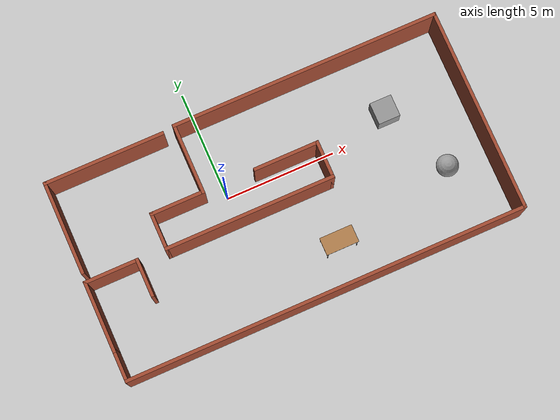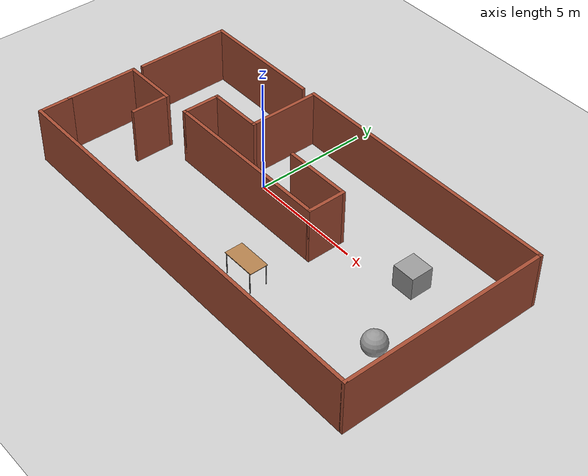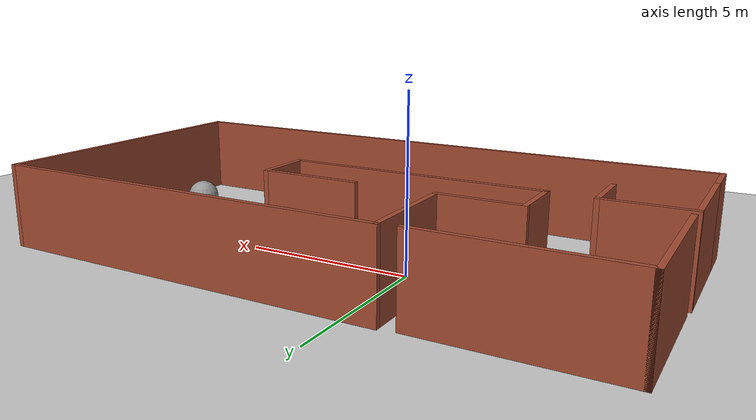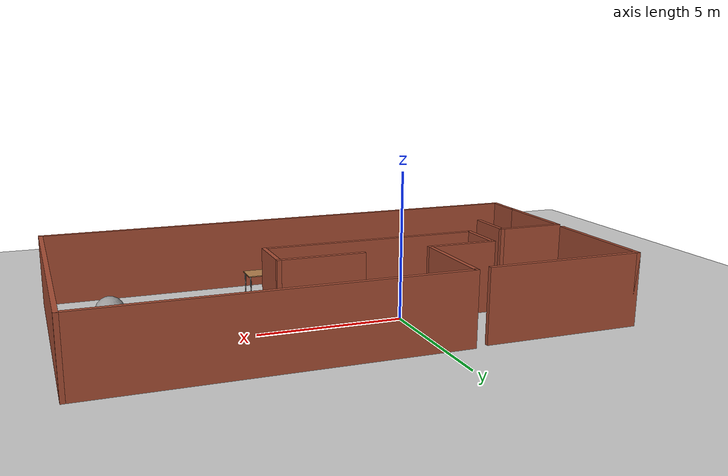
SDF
<sdf version="1.6">
 <world name="default">
  <light name="sun" type="directional">
   <pose>0 0 10 0 -0 0</pose>
   <diffuse>0.8 0.8 0.8 1</diffuse>
   <specular>0.2 0.2 0.2 1</specular>
   <attenuation>
    <range>1000</range>
    <constant>0.9</constant>
    <linear>0.01</linear>
    <quadratic>0.001</quadratic>
   </attenuation>
   <direction>-0.5 0.1 -0.9</direction>
  </light>
  <model name="ground_plane">
   <static>1</static>
   <link name="link">
    <collision name="collision">
     <geometry><plane><normal>0 0 1</normal><size>100 100</size></plane></geometry>
     <surface>
      <contact><collide_bitmask>65535</collide_bitmask></contact>
      <friction><ode><mu>100</mu><mu2>50</mu2></ode></friction>
     </surface>
    </collision>
    <visual name="visual">
     <cast_shadows>0</cast_shadows>
     <geometry><plane><normal>0 0 1</normal><size>100 100</size></plane></geometry>
     <material>
      <script><uri>file://media/materials/scripts/gazebo.material</uri><name>Gazebo/Grey</name></script>
     </material>
    </visual>
   </link>
  </model>
  <gravity>0 0 -9.8</gravity>
  <magnetic_field>6e-06 2.3e-05 -4.2e-05</magnetic_field>
  <atmosphere type="adiabatic"/>
  <physics name="default_physics" default="0" type="ode">
   <max_step_size>0.001</max_step_size>
   <real_time_factor>1</real_time_factor>
   <real_time_update_rate>1000</real_time_update_rate>
  </physics>
  <scene><ambient>0.4 0.4 0.4 1</ambient><background>0.7 0.7 0.7 1</background><shadows>1</shadows></scene>
  <spherical_coordinates>
   <surface_model>EARTH_WGS84</surface_model>
   <latitude_deg>0</latitude_deg>
   <longitude_deg>0</longitude_deg>
   <elevation>0</elevation>
   <heading_deg>0</heading_deg>
  </spherical_coordinates>
  <model name="room.world">
   <pose>2.12 -1.19 0 0 -0 0</pose>
   <link name="Wall_0">
    <collision name="Wall_0_Collision">
     <geometry><box><size>1.75 0.15 2.5</size></box></geometry>
     <pose>0 0 1.25 0 -0 0</pose>
    </collision>
    <visual name="Wall_0_Visual">
     <pose>0 0 1.25 0 -0 0</pose>
     <geometry><box><size>1.75 0.15 2.5</size></box></geometry>
     <material>
      <script><uri>file://media/materials/scripts/gazebo.material</uri><name>Gazebo/Bricks</name></script>
      <ambient>1 1 1 1</ambient>
     </material>
     <meta><layer>0</layer></meta>
    </visual>
    <pose>-6.7 -0.9 0 0 -0 1.5708</pose>
   </link>
   <link name="Wall_1">
    <collision name="Wall_1_Collision">
     <geometry><box><size>2.5 0.15 2.5</size></box></geometry>
     <pose>0 0 1.25 0 -0 0</pose>
    </collision>
    <visual name="Wall_1_Visual">
     <pose>0 0 1.25 0 -0 0</pose>
     <geometry><box><size>2.5 0.15 2.5</size></box></geometry>
     <material>
      <script><uri>file://media/materials/scripts/gazebo.material</uri><name>Gazebo/Bricks</name></script>
      <ambient>1 1 1 1</ambient>
     </material>
     <meta><layer>0</layer></meta>
    </visual>
    <pose>-7.875 -0.1 0 0 -0 3.14159</pose>
   </link>
   <link name="Wall_10">
    <collision name="Wall_10_Collision">
     <geometry><box><size>7.75 0.15 2.5</size></box></geometry>
     <pose>0 0 1.25 0 -0 0</pose>
    </collision>
    <visual name="Wall_10_Visual">
     <pose>0 0 1.25 0 -0 0</pose>
     <geometry><box><size>7.75 0.15 2.5</size></box></geometry>
     <material>
      <script><uri>file://media/materials/scripts/gazebo.material</uri><name>Gazebo/Bricks</name></script>
      <ambient>1 1 1 1</ambient>
     </material>
     <meta><layer>0</layer></meta>
    </visual>
    <pose>-1.6 -0.15 0 0 -0 0</pose>
   </link>
   <link name="Wall_11">
    <collision name="Wall_11_Collision">
     <geometry><box><size>1.75 0.15 2.5</size></box></geometry>
     <pose>0 0 1.25 0 -0 0</pose>
    </collision>
    <visual name="Wall_11_Visual">
     <pose>0 0 1.25 0 -0 0</pose>
     <geometry><box><size>1.75 0.15 2.5</size></box></geometry>
     <material>
      <script><uri>file://media/materials/scripts/gazebo.material</uri><name>Gazebo/Bricks</name></script>
      <ambient>1 1 1 1</ambient>
     </material>
     <meta><layer>0</layer></meta>
    </visual>
    <pose>2.2 0.65 0 0 -0 1.5708</pose>
   </link>
   <link name="Wall_12">
    <collision name="Wall_12_Collision">
     <geometry><box><size>3 0.15 2.5</size></box></geometry>
     <pose>0 0 1.25 0 -0 0</pose>
    </collision>
    <visual name="Wall_12_Visual">
     <pose>0 0 1.25 0 -0 0</pose>
     <geometry><box><size>3 0.15 2.5</size></box></geometry>
     <material>
      <script><uri>file://media/materials/scripts/gazebo.material</uri><name>Gazebo/Bricks</name></script>
      <ambient>1 1 1 1</ambient>
     </material>
     <meta><layer>0</layer></meta>
    </visual>
    <pose>0.775 1.45 0 0 -0 3.14159</pose>
   </link>
   <link name="Wall_14">
    <collision name="Wall_14_Collision">
     <geometry><box><size>4.25 0.15 2.5</size></box></geometry>
     <pose>0 0 1.25 0 -0 0</pose>
    </collision>
    <visual name="Wall_14_Visual">
     <pose>0 0 1.25 0 -0 0</pose>
     <geometry><box><size>4.25 0.15 2.5</size></box></geometry>
     <material>
      <script><uri>file://media/materials/scripts/gazebo.material</uri><name>Gazebo/Bricks</name></script>
      <ambient>1 1 1 1</ambient>
     </material>
     <meta><layer>0</layer></meta>
    </visual>
    <pose>-8.98811 2.39283 0 0 -0 1.5708</pose>
   </link>
   <link name="Wall_15">
    <collision name="Wall_15_Collision">
     <geometry><box><size>5.5 0.15 2.5</size></box></geometry>
     <pose>0 0 1.25 0 -0 0</pose>
    </collision>
    <visual name="Wall_15_Visual">
     <pose>0 0 1.25 0 -0 0</pose>
     <geometry><box><size>5.5 0.15 2.5</size></box></geometry>
     <material>
      <script><uri>file://media/materials/scripts/gazebo.material</uri><name>Gazebo/Bricks</name></script>
      <ambient>1 1 1 1</ambient>
     </material>
     <meta><layer>0</layer></meta>
    </visual>
    <pose>-6.31311 4.44283 0 0 -0 0</pose>
   </link>
   <link name="Wall_2">
    <collision name="Wall_2_Collision">
     <geometry><box><size>3.25 0.15 2.5</size></box></geometry>
     <pose>0 0 1.25 0 -0 0</pose>
    </collision>
    <visual name="Wall_2_Visual">
     <pose>0 0 1.25 0 -0 0</pose>
     <geometry><box><size>3.25 0.15 2.5</size></box></geometry>
     <material>
      <script><uri>file://media/materials/scripts/gazebo.material</uri><name>Gazebo/Bricks</name></script>
      <ambient>1 1 1 1</ambient>
     </material>
     <meta><layer>0</layer></meta>
    </visual>
    <pose>-9.05 -1.65 0 0 -0 -1.5708</pose>
   </link>
   <link name="Wall_3">
    <collision name="Wall_3_Collision">
     <geometry><box><size>1.5 0.15 2.5</size></box></geometry>
     <pose>0 0 1.25 0 -0 0</pose>
    </collision>
    <visual name="Wall_3_Visual">
     <pose>0 0 1.25 0 -0 0</pose>
     <geometry><box><size>1.5 0.15 2.5</size></box></geometry>
     <material>
      <script><uri>file://media/materials/scripts/gazebo.material</uri><name>Gazebo/Bricks</name></script>
      <ambient>1 1 1 1</ambient>
     </material>
     <meta><layer>0</layer></meta>
    </visual>
    <pose>-9.05 -3.875 0 0 -0 -1.5708</pose>
   </link>
   <link name="Wall_4">
    <collision name="Wall_4_Collision">
     <geometry><box><size>18.25 0.15 2.5</size></box></geometry>
     <pose>0 0 1.25 0 -0 0</pose>
    </collision>
    <visual name="Wall_4_Visual">
     <pose>0 0 1.25 0 -0 0</pose>
     <geometry><box><size>18.25 0.15 2.5</size></box></geometry>
     <material>
      <script><uri>file://media/materials/scripts/gazebo.material</uri><name>Gazebo/Bricks</name></script>
      <ambient>1 1 1 1</ambient>
     </material>
     <meta><layer>0</layer></meta>
    </visual>
    <pose>-0 -4.55 0 0 -0 0</pose>
   </link>
   <link name="Wall_5">
    <collision name="Wall_5_Collision">
     <geometry><box><size>9.25 0.15 2.5</size></box></geometry>
     <pose>0 0 1.25 0 -0 0</pose>
    </collision>
    <visual name="Wall_5_Visual">
     <pose>0 0 1.25 0 -0 0</pose>
     <geometry><box><size>9.25 0.15 2.5</size></box></geometry>
     <material>
      <script><uri>file://media/materials/scripts/gazebo.material</uri><name>Gazebo/Bricks</name></script>
      <ambient>1 1 1 1</ambient>
     </material>
     <meta><layer>0</layer></meta>
    </visual>
    <pose>9.05 0 0 0 -0 1.5708</pose>
   </link>
   <link name="Wall_6">
    <collision name="Wall_6_Collision">
     <geometry><box><size>12.25 0.15 2.5</size></box></geometry>
     <pose>0 0 1.25 0 -0 0</pose>
    </collision>
    <visual name="Wall_6_Visual">
     <pose>0 0 1.25 0 -0 0</pose>
     <geometry><box><size>12.25 0.15 2.5</size></box></geometry>
     <material>
      <script><uri>file://media/materials/scripts/gazebo.material</uri><name>Gazebo/Bricks</name></script>
      <ambient>1 1 1 1</ambient>
     </material>
     <meta><layer>0</layer></meta>
    </visual>
    <pose>3 4.55 0 0 -0 3.14159</pose>
   </link>
   <link name="Wall_7">
    <collision name="Wall_7_Collision">
     <geometry><box><size>3.25 0.15 2.5</size></box></geometry>
     <pose>0 0 1.25 0 -0 0</pose>
    </collision>
    <visual name="Wall_7_Visual">
     <pose>0 0 1.25 0 -0 0</pose>
     <geometry><box><size>3.25 0.15 2.5</size></box></geometry>
     <material>
      <script><uri>file://media/materials/scripts/gazebo.material</uri><name>Gazebo/Bricks</name></script>
      <ambient>1 1 1 1</ambient>
     </material>
     <meta><layer>0</layer></meta>
    </visual>
    <pose>-3.05 3 0 0 -0 -1.5708</pose>
   </link>
   <link name="Wall_8">
    <collision name="Wall_8_Collision">
     <geometry><box><size>2.5 0.15 2.5</size></box></geometry>
     <pose>0 0 1.25 0 -0 0</pose>
    </collision>
    <visual name="Wall_8_Visual">
     <pose>0 0 1.25 0 -0 0</pose>
     <geometry><box><size>2.5 0.15 2.5</size></box></geometry>
     <material>
      <script><uri>file://media/materials/scripts/gazebo.material</uri><name>Gazebo/Bricks</name></script>
      <ambient>1 1 1 1</ambient>
     </material>
     <meta><layer>0</layer></meta>
    </visual>
    <pose>-4.225 1.45 0 0 -0 3.14159</pose>
   </link>
   <link name="Wall_9">
    <collision name="Wall_9_Collision">
     <geometry><box><size>1.75 0.15 2.5</size></box></geometry>
     <pose>0 0 1.25 0 -0 0</pose>
    </collision>
    <visual name="Wall_9_Visual">
     <pose>0 0 1.25 0 -0 0</pose>
     <geometry><box><size>1.75 0.15 2.5</size></box></geometry>
     <material>
      <script><uri>file://media/materials/scripts/gazebo.material</uri><name>Gazebo/Bricks</name></script>
      <ambient>1 1 1 1</ambient>
     </material>
     <meta><layer>0</layer></meta>
    </visual>
    <pose>-5.4 0.65 0 0 -0 -1.5708</pose>
   </link>
   <static>1</static>
  </model>
  <model name="unit_sphere">
   <pose>9.26558 -2.57919 0.5 0 -0 0</pose>
   <link name="link">
    <inertial>
     <mass>1</mass>
     <inertia><ixx>0.1</ixx><ixy>0</ixy><ixz>0</ixz><iyy>0.1</iyy><iyz>0</iyz><izz>0.1</izz></inertia>
    </inertial>
    <collision name="collision"><geometry><sphere><radius>0.5</radius></sphere></geometry></collision>
    <visual name="visual">
     <geometry><sphere><radius>0.5</radius></sphere></geometry>
     <material>
      <script><name>Gazebo/Grey</name><uri>file://media/materials/scripts/gazebo.material</uri></script>
     </material>
    </visual>
   </link>
  </model>
  <model name="table">
   <static>1</static>
   <link name="link">
    <collision name="surface">
     <pose>0 0 1 0 -0 0</pose>
     <geometry><box><size>1.5 0.8 0.03</size></box></geometry>
     <surface><friction><ode><mu>0.6</mu><mu2>0.6</mu2></ode></friction></surface>
    </collision>
    <visual name="visual1">
     <pose>0 0 1 0 -0 0</pose>
     <geometry><box><size>1.5 0.8 0.03</size></box></geometry>
     <material>
      <script><uri>file://media/materials/scripts/gazebo.material</uri><name>Gazebo/Wood</name></script>
     </material>
    </visual>
    <collision name="front_left_leg">
     <pose>0.68 0.38 0.5 0 -0 0</pose>
     <geometry><cylinder><radius>0.02</radius><length>1</length></cylinder></geometry>
    </collision>
    <visual name="front_left_leg">
     <pose>0.68 0.38 0.5 0 -0 0</pose>
     <geometry><cylinder><radius>0.02</radius><length>1</length></cylinder></geometry>
     <material>
      <script><uri>file://media/materials/scripts/gazebo.material</uri><name>Gazebo/Grey</name></script>
     </material>
    </visual>
    <collision name="front_right_leg">
     <pose>0.68 -0.38 0.5 0 -0 0</pose>
     <geometry><cylinder><radius>0.02</radius><length>1</length></cylinder></geometry>
    </collision>
    <visual name="front_right_leg">
     <pose>0.68 -0.38 0.5 0 -0 0</pose>
     <geometry><cylinder><radius>0.02</radius><length>1</length></cylinder></geometry>
     <material>
      <script><uri>file://media/materials/scripts/gazebo.material</uri><name>Gazebo/Grey</name></script>
     </material>
    </visual>
    <collision name="back_right_leg">
     <pose>-0.68 -0.38 0.5 0 -0 0</pose>
     <geometry><cylinder><radius>0.02</radius><length>1</length></cylinder></geometry>
    </collision>
    <visual name="back_right_leg">
     <pose>-0.68 -0.38 0.5 0 -0 0</pose>
     <geometry><cylinder><radius>0.02</radius><length>1</length></cylinder></geometry>
     <material>
      <script><uri>file://media/materials/scripts/gazebo.material</uri><name>Gazebo/Grey</name></script>
     </material>
    </visual>
    <collision name="back_left_leg">
     <pose>-0.68 0.38 0.5 0 -0 0</pose>
     <geometry><cylinder><radius>0.02</radius><length>1</length></cylinder></geometry>
    </collision>
    <visual name="back_left_leg">
     <pose>-0.68 0.38 0.5 0 -0 0</pose>
     <geometry><cylinder><radius>0.02</radius><length>1</length></cylinder></geometry>
     <material>
      <script><uri>file://media/materials/scripts/gazebo.material</uri><name>Gazebo/Grey</name></script>
     </material>
    </visual>
   </link>
   <pose>3.59948 -3.72959 0 0 -0 0</pose>
  </model>
  <model name="unit_box">
   <pose>7.73924 0.682622 0.5 0 -0 0</pose>
   <link name="link">
    <inertial>
     <mass>1</mass>
     <inertia>
      <ixx>0.166667</ixx>
      <ixy>0</ixy>
      <ixz>0</ixz>
      <iyy>0.166667</iyy>
      <iyz>0</iyz>
      <izz>0.166667</izz>
     </inertia>
    </inertial>
    <collision name="collision"><geometry><box><size>1 1 1</size></box></geometry></collision>
    <visual name="visual">
     <geometry><box><size>1 1 1</size></box></geometry>
     <material>
      <script><name>Gazebo/Grey</name><uri>file://media/materials/scripts/gazebo.material</uri></script>
     </material>
    </visual>
   </link>
  </model>
 </world>
</sdf>
